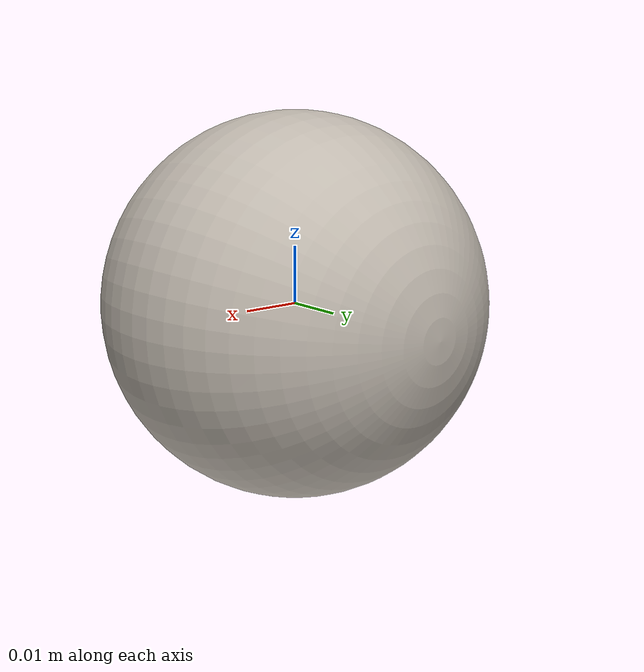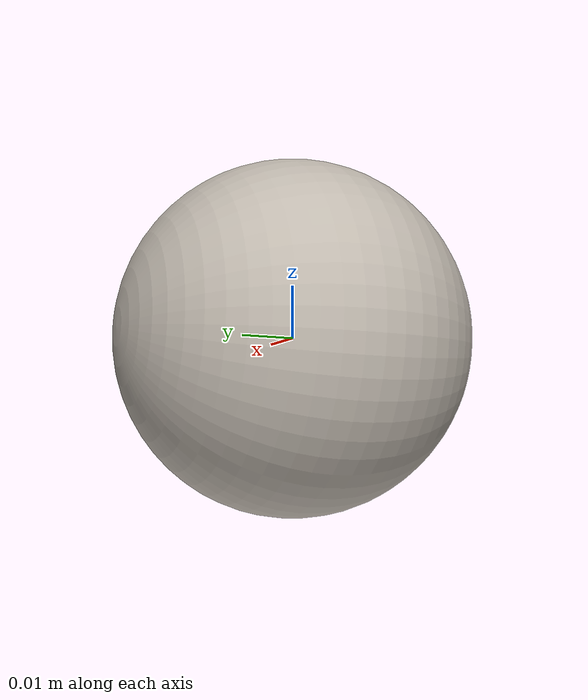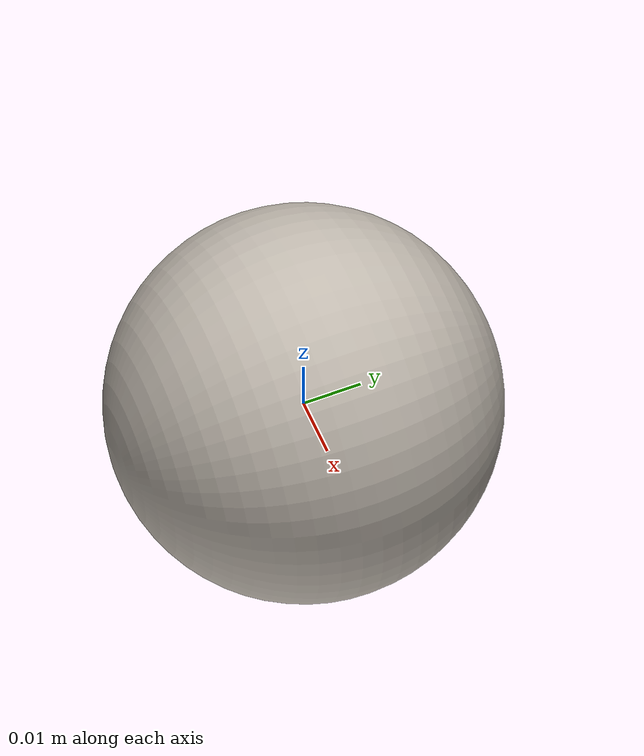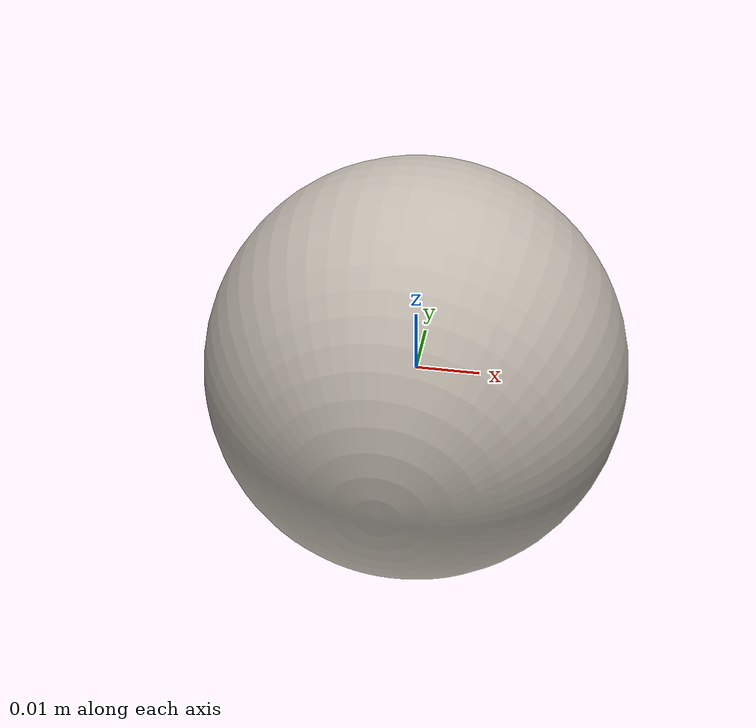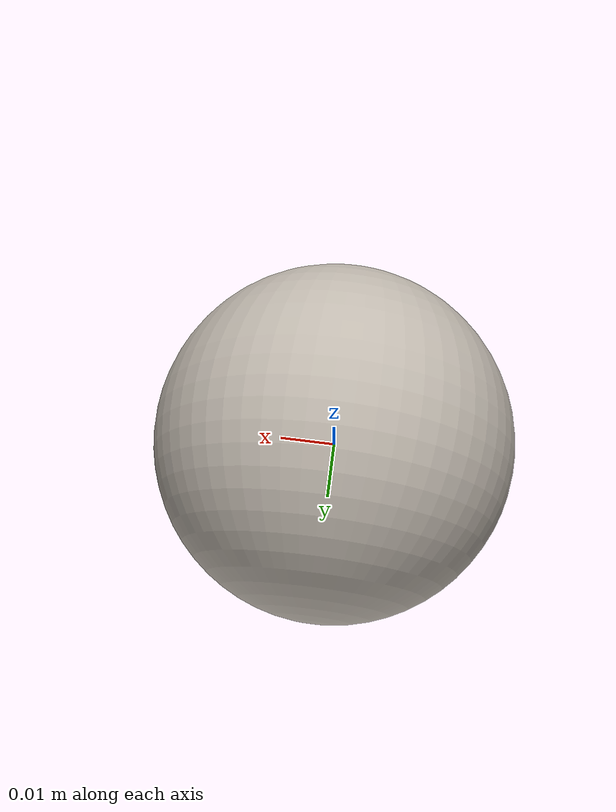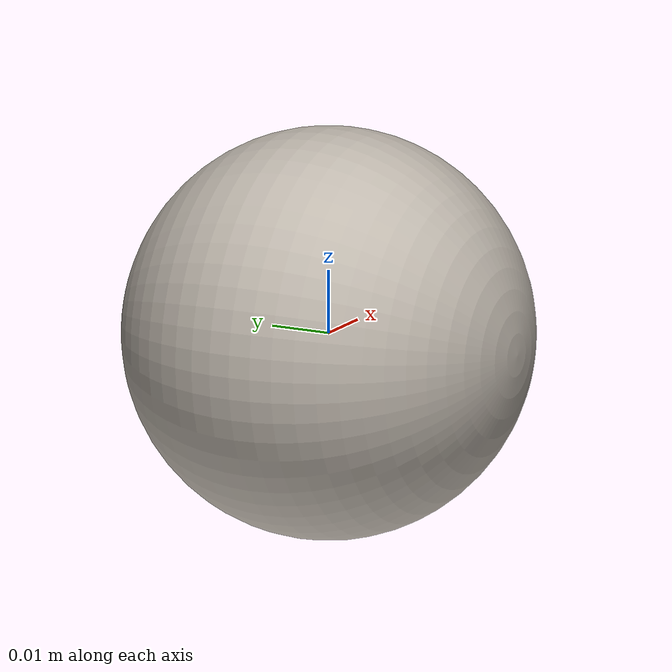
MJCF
<mujoco model="ball_e69cc5f0">
  <compiler angle="radian"/>
  <asset>
    <texture type="2d" name="ball_e69cc5f0_tex" file="ball_e69cc5f0_visual_0.png"/>
    <material name="ball_e69cc5f0_mat" texture="ball_e69cc5f0_tex"/>
    <mesh name="ball_e69cc5f0_visual" content_type="model/obj" file="ball_e69cc5f0_visual.obj" scale="-0.928598 0.928598 0.928598"/>
    <mesh name="ball_e69cc5f0_c0" content_type="model/obj" file="ball_e69cc5f0_c0.obj" scale="-0.928598 0.928598 0.928598"/>
  </asset>
  <worldbody>
    <body name="ball_e69cc5f0">
      <freejoint/>
      <geom name="ball_e69cc5f0_visual" type="mesh" mesh="ball_e69cc5f0_visual" mass="1e-8" contype="0" conaffinity="0" group="2" material="ball_e69cc5f0_mat"/>
      <geom name="ball_e69cc5f0_c0" type="mesh" mesh="ball_e69cc5f0_c0" group="3" density="427.662" friction="0.9 0.05 0.005" condim="4" rgba="0.4 0.5 0.9 0.35"/>
    </body>
  </worldbody>
</mujoco>
